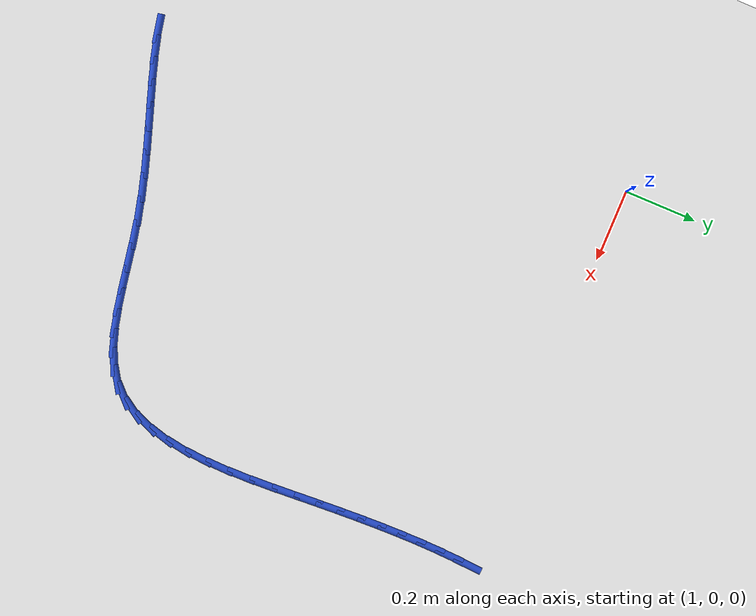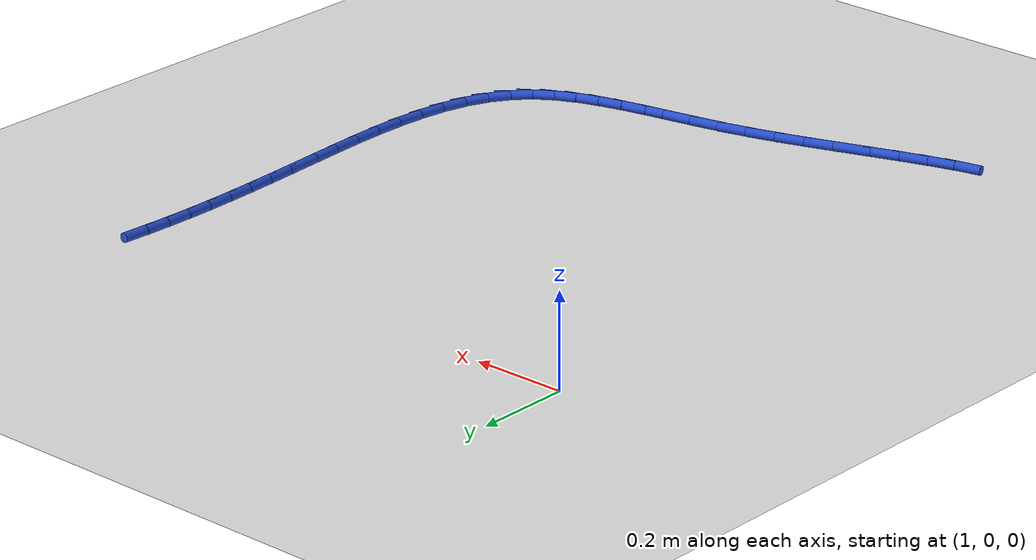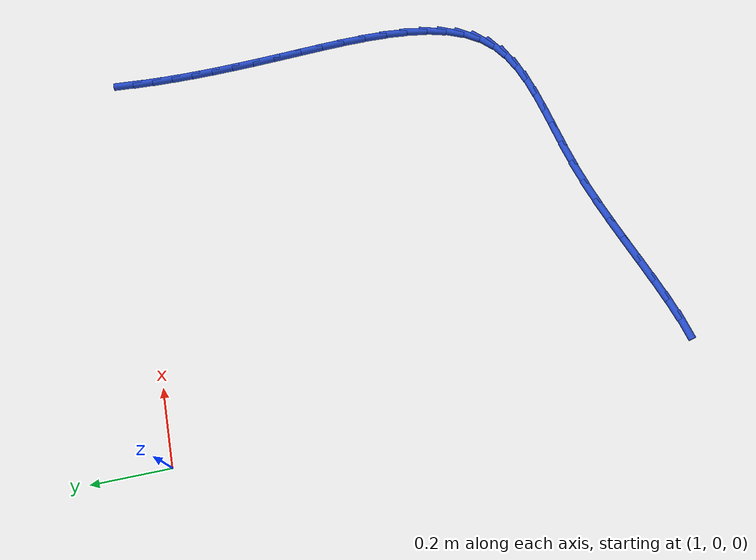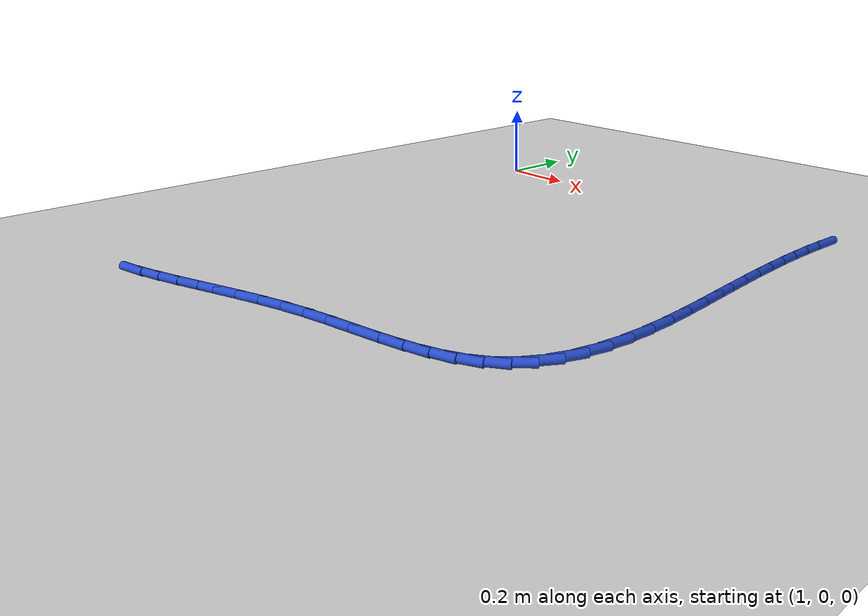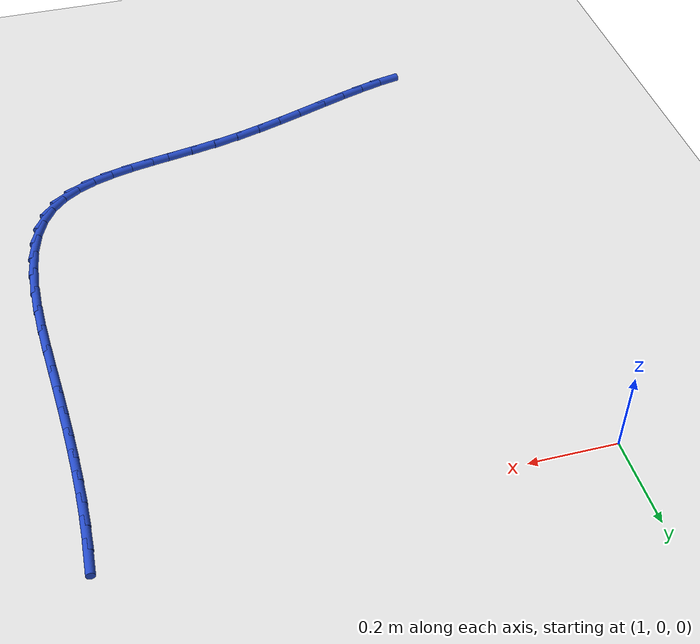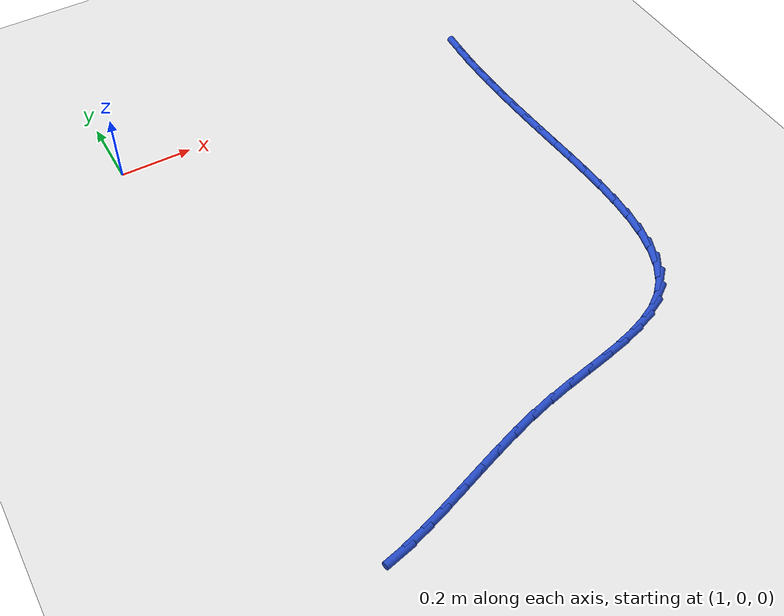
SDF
<sdf version="1.6">
 <world name="default">
  <model name="ground_plane">
   <static>1</static>
   <link name="link">
    <collision name="collision">
     <geometry><plane><normal>0 0 1</normal><size>100 100</size></plane></geometry>
     <surface><friction><ode><mu>100</mu><mu2>50</mu2></ode></friction></surface>
    </collision>
    <visual name="visual">
     <cast_shadows>0</cast_shadows>
     <geometry><plane><normal>0 0 1</normal><size>100 100</size></plane></geometry>
     <material>
      <script><uri>file://media/materials/scripts/gazebo.material</uri><name>Gazebo/WhiteGlow</name></script>
     </material>
    </visual>
   </link>
  </model>
  <model name="line">
   <link name="link_71">
    <pose>2.087163092779613 0.002262728078685952 0.01 0 1.57 1.517147207940919</pose>
    <collision name="collision">
     <geometry><cylinder><radius>0.01</radius><length>0.08</length></cylinder></geometry>
    </collision>
    <visual name="visual">
     <material>
      <script><name>Gazebo/Blue</name><uri>file://media/materials/scripts/gazebo.material</uri></script>
     </material>
     <geometry><cylinder><radius>0.01</radius><length>0.08</length></cylinder></geometry>
    </visual>
   </link>
   <link name="link_72">
    <pose>2.0842456211933587 -0.05206569449110433 0.01 0 1.57 1.5443812148516005</pose>
    <collision name="collision">
     <geometry><cylinder><radius>0.01</radius><length>0.08</length></cylinder></geometry>
    </collision>
    <visual name="visual">
     <material>
      <script><name>Gazebo/Blue</name><uri>file://media/materials/scripts/gazebo.material</uri></script>
     </material>
     <geometry><cylinder><radius>0.01</radius><length>0.08</length></cylinder></geometry>
    </visual>
   </link>
   <link name="link_73">
    <pose>2.0827942262234598 -0.10699854441019695 0.01 0 1.57 1.56823728818078</pose>
    <collision name="collision">
     <geometry><cylinder><radius>0.01</radius><length>0.08</length></cylinder></geometry>
    </collision>
    <visual name="visual">
     <material>
      <script><name>Gazebo/Blue</name><uri>file://media/materials/scripts/gazebo.material</uri></script>
     </material>
     <geometry><cylinder><radius>0.01</radius><length>0.08</length></cylinder></geometry>
    </visual>
   </link>
   <link name="link_74">
    <pose>2.0826517521912815 -0.1626732498978914 0.01 0 1.57 -1.5529517130383117</pose>
    <collision name="collision">
     <geometry><cylinder><radius>0.01</radius><length>0.08</length></cylinder></geometry>
    </collision>
    <visual name="visual">
     <material>
      <script><name>Gazebo/Blue</name><uri>file://media/materials/scripts/gazebo.material</uri></script>
     </material>
     <geometry><cylinder><radius>0.01</radius><length>0.08</length></cylinder></geometry>
    </visual>
   </link>
   <link name="link_75">
    <pose>2.083661043418189 -0.2192272391734897 0.01 0 1.57 -1.5360027241434457</pose>
    <collision name="collision">
     <geometry><cylinder><radius>0.01</radius><length>0.08</length></cylinder></geometry>
    </collision>
    <visual name="visual">
     <material>
      <script><name>Gazebo/Blue</name><uri>file://media/materials/scripts/gazebo.material</uri></script>
     </material>
     <geometry><cylinder><radius>0.01</radius><length>0.08</length></cylinder></geometry>
    </visual>
   </link>
   <link name="link_76">
    <pose>2.085664944225547 -0.27679794045629336 0.01 0 1.57 -1.522449826199268</pose>
    <collision name="collision">
     <geometry><cylinder><radius>0.01</radius><length>0.08</length></cylinder></geometry>
    </collision>
    <visual name="visual">
     <material>
      <script><name>Gazebo/Blue</name><uri>file://media/materials/scripts/gazebo.material</uri></script>
     </material>
     <geometry><cylinder><radius>0.01</radius><length>0.08</length></cylinder></geometry>
    </visual>
   </link>
   <link name="link_77">
    <pose>2.0885062989347207 -0.33552278196560326 0.01 0 1.57 -1.5121853663705571</pose>
    <collision name="collision">
     <geometry><cylinder><radius>0.01</radius><length>0.08</length></cylinder></geometry>
    </collision>
    <visual name="visual">
     <material>
      <script><name>Gazebo/Blue</name><uri>file://media/materials/scripts/gazebo.material</uri></script>
     </material>
     <geometry><cylinder><radius>0.01</radius><length>0.08</length></cylinder></geometry>
    </visual>
   </link>
   <link name="link_78">
    <pose>2.0920279518670757 -0.39553919192072196 0.01 0 1.57 -1.5050636957519175</pose>
    <collision name="collision">
     <geometry><cylinder><radius>0.01</radius><length>0.08</length></cylinder></geometry>
    </collision>
    <visual name="visual">
     <material>
      <script><name>Gazebo/Blue</name><uri>file://media/materials/scripts/gazebo.material</uri></script>
     </material>
     <geometry><cylinder><radius>0.01</radius><length>0.08</length></cylinder></geometry>
    </visual>
   </link>
   <link name="link_79">
    <pose>2.096072747343976 -0.45698459854094836 0.01 0 1.57 -1.501643881255641</pose>
    <collision name="collision">
     <geometry><cylinder><radius>0.01</radius><length>0.08</length></cylinder></geometry>
    </collision>
    <visual name="visual">
     <material>
      <script><name>Gazebo/Blue</name><uri>file://media/materials/scripts/gazebo.material</uri></script>
     </material>
     <geometry><cylinder><radius>0.01</radius><length>0.08</length></cylinder></geometry>
    </visual>
   </link>
   <link name="link_80">
    <pose>2.1004311447800097 -0.5199100354146243 0.01 0 1.57 -1.5069986258296735</pose>
    <collision name="collision">
     <geometry><cylinder><radius>0.01</radius><length>0.08</length></cylinder></geometry>
    </collision>
    <visual name="visual">
     <material>
      <script><name>Gazebo/Blue</name><uri>file://media/materials/scripts/gazebo.material</uri></script>
     </material>
     <geometry><cylinder><radius>0.01</radius><length>0.08</length></cylinder></geometry>
    </visual>
   </link>
   <link name="link_81">
    <pose>2.1045083155807567 -0.5837311085346446 0.01 0 1.57 -1.523389149344521</pose>
    <collision name="collision">
     <geometry><cylinder><radius>0.01</radius><length>0.08</length></cylinder></geometry>
    </collision>
    <visual name="visual">
     <material>
      <script><name>Gazebo/Blue</name><uri>file://media/materials/scripts/gazebo.material</uri></script>
     </material>
     <geometry><cylinder><radius>0.01</radius><length>0.08</length></cylinder></geometry>
    </visual>
   </link>
   <link name="link_82">
    <pose>2.1075374726445957 -0.6475798251880198 0.01 0 1.57 -1.5515379984079132</pose>
    <collision name="collision">
     <geometry><cylinder><radius>0.01</radius><length>0.08</length></cylinder></geometry>
    </collision>
    <visual name="visual">
     <material>
      <script><name>Gazebo/Blue</name><uri>file://media/materials/scripts/gazebo.material</uri></script>
     </material>
     <geometry><cylinder><radius>0.01</radius><length>0.08</length></cylinder></geometry>
    </visual>
   </link>
   <link name="link_83">
    <pose>2.108751033239691 -0.7105868804864948 0.01 0 1.57 1.548455737709211</pose>
    <collision name="collision">
     <geometry><cylinder><radius>0.01</radius><length>0.08</length></cylinder></geometry>
    </collision>
    <visual name="visual">
     <material>
      <script><name>Gazebo/Blue</name><uri>file://media/materials/scripts/gazebo.material</uri></script>
     </material>
     <geometry><cylinder><radius>0.01</radius><length>0.08</length></cylinder></geometry>
    </visual>
   </link>
   <link name="link_84">
    <pose>2.1073814146342054 -0.7718829695418168 0.01 0 1.57 1.490575179228844</pose>
    <collision name="collision">
     <geometry><cylinder><radius>0.01</radius><length>0.08</length></cylinder></geometry>
    </collision>
    <visual name="visual">
     <material>
      <script><name>Gazebo/Blue</name><uri>file://media/materials/scripts/gazebo.material</uri></script>
     </material>
     <geometry><cylinder><radius>0.01</radius><length>0.08</length></cylinder></geometry>
    </visual>
   </link>
   <link name="link_85">
    <pose>2.1026610340963017 -0.8305987874657319 0.01 0 1.57 1.41220940392731</pose>
    <collision name="collision">
     <geometry><cylinder><radius>0.01</radius><length>0.08</length></cylinder></geometry>
    </collision>
    <visual name="visual">
     <material>
      <script><name>Gazebo/Blue</name><uri>file://media/materials/scripts/gazebo.material</uri></script>
     </material>
     <geometry><cylinder><radius>0.01</radius><length>0.08</length></cylinder></geometry>
    </visual>
   </link>
   <link name="link_86">
    <pose>2.0938223088941457 -0.8858650293699866 0.01 0 1.57 1.307654174831309</pose>
    <collision name="collision">
     <geometry><cylinder><radius>0.01</radius><length>0.08</length></cylinder></geometry>
    </collision>
    <visual name="visual">
     <material>
      <script><name>Gazebo/Blue</name><uri>file://media/materials/scripts/gazebo.material</uri></script>
     </material>
     <geometry><cylinder><radius>0.01</radius><length>0.08</length></cylinder></geometry>
    </visual>
   </link>
   <link name="link_87">
    <pose>2.0800976562958993 -0.9368123903663279 0.01 0 1.57 1.170212591688762</pose>
    <collision name="collision">
     <geometry><cylinder><radius>0.01</radius><length>0.08</length></cylinder></geometry>
    </collision>
    <visual name="visual">
     <material>
      <script><name>Gazebo/Blue</name><uri>file://media/materials/scripts/gazebo.material</uri></script>
     </material>
     <geometry><cylinder><radius>0.01</radius><length>0.08</length></cylinder></geometry>
    </visual>
   </link>
   <link name="link_88">
    <pose>2.0607194935697266 -0.9825715655665006 0.01 0 1.57 0.9945422183669194</pose>
    <collision name="collision">
     <geometry><cylinder><radius>0.01</radius><length>0.08</length></cylinder></geometry>
    </collision>
    <visual name="visual">
     <material>
      <script><name>Gazebo/Blue</name><uri>file://media/materials/scripts/gazebo.material</uri></script>
     </material>
     <geometry><cylinder><radius>0.01</radius><length>0.08</length></cylinder></geometry>
    </visual>
   </link>
   <link name="link_89">
    <pose>2.034920237983791 -1.0222732500822518 0.01 0 1.57 0.7833570135102768</pose>
    <collision name="collision">
     <geometry><cylinder><radius>0.01</radius><length>0.08</length></cylinder></geometry>
    </collision>
    <visual name="visual">
     <material>
      <script><name>Gazebo/Blue</name><uri>file://media/materials/scripts/gazebo.material</uri></script>
     </material>
     <geometry><cylinder><radius>0.01</radius><length>0.08</length></cylinder></geometry>
    </visual>
   </link>
   <link name="link_90">
    <pose>2.001967922899663 -1.0550913177705665 0.01 0 1.57 0.5782835365766634</pose>
    <collision name="collision">
     <geometry><cylinder><radius>0.01</radius><length>0.08</length></cylinder></geometry>
    </collision>
    <visual name="visual">
     <material>
      <script><name>Gazebo/Blue</name><uri>file://media/materials/scripts/gazebo.material</uri></script>
     </material>
     <geometry><cylinder><radius>0.01</radius><length>0.08</length></cylinder></geometry>
    </visual>
   </link>
   <link name="link_91">
    <pose>1.9619600158048371 -1.0812051970394696 0.01 0 1.57 0.4200155871883968</pose>
    <collision name="collision">
     <geometry><cylinder><radius>0.01</radius><length>0.08</length></cylinder></geometry>
    </collision>
    <visual name="visual">
     <material>
      <script><name>Gazebo/Blue</name><uri>file://media/materials/scripts/gazebo.material</uri></script>
     </material>
     <geometry><cylinder><radius>0.01</radius><length>0.08</length></cylinder></geometry>
    </visual>
   </link>
   <link name="link_92">
    <pose>1.9158291609156402 -1.1018068328240305 0.01 0 1.57 0.30819702439163044</pose>
    <collision name="collision">
     <geometry><cylinder><radius>0.01</radius><length>0.08</length></cylinder></geometry>
    </collision>
    <visual name="visual">
     <material>
      <script><name>Gazebo/Blue</name><uri>file://media/materials/scripts/gazebo.material</uri></script>
     </material>
     <geometry><cylinder><radius>0.01</radius><length>0.08</length></cylinder></geometry>
    </visual>
   </link>
   <link name="link_93">
    <pose>1.8645447670795234 -1.11813274122054 0.01 0 1.57 0.23510601362853778</pose>
    <collision name="collision">
     <geometry><cylinder><radius>0.01</radius><length>0.08</length></cylinder></geometry>
    </collision>
    <visual name="visual">
     <material>
      <script><name>Gazebo/Blue</name><uri>file://media/materials/scripts/gazebo.material</uri></script>
     </material>
     <geometry><cylinder><radius>0.01</radius><length>0.08</length></cylinder></geometry>
    </visual>
   </link>
   <link name="link_94">
    <pose>1.8090762431439382 -1.1314194383252882 0.01 0 1.57 0.19325247205280616</pose>
    <collision name="collision">
     <geometry><cylinder><radius>0.01</radius><length>0.08</length></cylinder></geometry>
    </collision>
    <visual name="visual">
     <material>
      <script><name>Gazebo/Blue</name><uri>file://media/materials/scripts/gazebo.material</uri></script>
     </material>
     <geometry><cylinder><radius>0.01</radius><length>0.08</length></cylinder></geometry>
    </visual>
   </link>
   <link name="link_95">
    <pose>1.7503929979563357 -1.1429034402345657 0.01 0 1.57 0.1773087977708831</pose>
    <collision name="collision">
     <geometry><cylinder><radius>0.01</radius><length>0.08</length></cylinder></geometry>
    </collision>
    <visual name="visual">
     <material>
      <script><name>Gazebo/Blue</name><uri>file://media/materials/scripts/gazebo.material</uri></script>
     </material>
     <geometry><cylinder><radius>0.01</radius><length>0.08</length></cylinder></geometry>
    </visual>
   </link>
   <link name="link_96">
    <pose>1.6894644403641705 -1.153821263044662 0.01 0 1.57 0.18418019842987973</pose>
    <collision name="collision">
     <geometry><cylinder><radius>0.01</radius><length>0.08</length></cylinder></geometry>
    </collision>
    <visual name="visual">
     <material>
      <script><name>Gazebo/Blue</name><uri>file://media/materials/scripts/gazebo.material</uri></script>
     </material>
     <geometry><cylinder><radius>0.01</radius><length>0.08</length></cylinder></geometry>
    </visual>
   </link>
   <link name="link_97">
    <pose>1.6272599792148932 -1.1654094228518674 0.01 0 1.57 0.2126150158831517</pose>
    <collision name="collision">
     <geometry><cylinder><radius>0.01</radius><length>0.08</length></cylinder></geometry>
    </collision>
    <visual name="visual">
     <material>
      <script><name>Gazebo/Blue</name><uri>file://media/materials/scripts/gazebo.material</uri></script>
     </material>
     <geometry><cylinder><radius>0.01</radius><length>0.08</length></cylinder></geometry>
    </visual>
   </link>
   <link name="link_98">
    <pose>1.564748914829663 -1.1789041733128012 0.01 0 1.57 0.25542545267913946</pose>
    <collision name="collision">
     <geometry><cylinder><radius>0.01</radius><length>0.08</length></cylinder></geometry>
    </collision>
    <visual name="visual">
     <material>
      <script><name>Gazebo/Blue</name><uri>file://media/materials/scripts/gazebo.material</uri></script>
     </material>
     <geometry><cylinder><radius>0.01</radius><length>0.08</length></cylinder></geometry>
    </visual>
   </link>
   <link name="link_99">
    <pose>1.5027187189179012 -1.195102067805955 0.01 0 1.57 0.29093249980109287</pose>
    <collision name="collision">
     <geometry><cylinder><radius>0.01</radius><length>0.08</length></cylinder></geometry>
    </collision>
    <visual name="visual">
     <material>
      <script><name>Gazebo/Blue</name><uri>file://media/materials/scripts/gazebo.material</uri></script>
     </material>
     <geometry><cylinder><radius>0.01</radius><length>0.08</length></cylinder></geometry>
    </visual>
   </link>
   <link name="link_100">
    <pose>1.4414035326520016 -1.2134615887170255 0.01 0 1.57 0.3153230643764065</pose>
    <collision name="collision">
     <geometry><cylinder><radius>0.01</radius><length>0.08</length></cylinder></geometry>
    </collision>
    <visual name="visual">
     <material>
      <script><name>Gazebo/Blue</name><uri>file://media/materials/scripts/gazebo.material</uri></script>
     </material>
     <geometry><cylinder><radius>0.01</radius><length>0.08</length></cylinder></geometry>
    </visual>
   </link>
   <link name="link_101">
    <pose>1.3809326241909021 -1.2331876131671393 0.01 0 1.57 0.3287671724495455</pose>
    <collision name="collision">
     <geometry><cylinder><radius>0.01</radius><length>0.08</length></cylinder></geometry>
    </collision>
    <visual name="visual">
     <material>
      <script><name>Gazebo/Blue</name><uri>file://media/materials/scripts/gazebo.material</uri></script>
     </material>
     <geometry><cylinder><radius>0.01</radius><length>0.08</length></cylinder></geometry>
    </visual>
   </link>
   <link name="link_102">
    <pose>1.3214352616935374 -1.2534850182774253 0.01 0 1.57 0.3311042992151008</pose>
    <collision name="collision">
     <geometry><cylinder><radius>0.01</radius><length>0.08</length></cylinder></geometry>
    </collision>
    <visual name="visual">
     <material>
      <script><name>Gazebo/Blue</name><uri>file://media/materials/scripts/gazebo.material</uri></script>
     </material>
     <geometry><cylinder><radius>0.01</radius><length>0.08</length></cylinder></geometry>
    </visual>
   </link>
   <link name="link_103">
    <pose>1.2630407133188433 -1.2735586811690112 0.01 0 1.57 0.3217606691585787</pose>
    <collision name="collision">
     <geometry><cylinder><radius>0.01</radius><length>0.08</length></cylinder></geometry>
    </collision>
    <visual name="visual">
     <material>
      <script><name>Gazebo/Blue</name><uri>file://media/materials/scripts/gazebo.material</uri></script>
     </material>
     <geometry><cylinder><radius>0.01</radius><length>0.08</length></cylinder></geometry>
    </visual>
   </link>
   <link name="link_104">
    <pose>1.2058782472257545 -1.2926134789630248 0.01 0 1.57 0.2996647051833844</pose>
    <collision name="collision">
     <geometry><cylinder><radius>0.01</radius><length>0.08</length></cylinder></geometry>
    </collision>
    <visual name="visual">
     <material>
      <script><name>Gazebo/Blue</name><uri>file://media/materials/scripts/gazebo.material</uri></script>
     </material>
     <geometry><cylinder><radius>0.01</radius><length>0.08</length></cylinder></geometry>
    </visual>
   </link>
   <link name="link_105">
    <pose>1.150077131573209 -1.3098542887805946 0.01 0 1.57 0.26316026123054553</pose>
    <collision name="collision">
     <geometry><cylinder><radius>0.01</radius><length>0.08</length></cylinder></geometry>
    </collision>
    <visual name="visual">
     <material>
      <script><name>Gazebo/Blue</name><uri>file://media/materials/scripts/gazebo.material</uri></script>
     </material>
     <geometry><cylinder><radius>0.01</radius><length>0.08</length></cylinder></geometry>
    </visual>
   </link>
   <link name="link_106">
    <pose>1.0957666345201416 -1.3244859877428479 0.01 0 1.57 0.20994299133055455</pose>
    <collision name="collision">
     <geometry><cylinder><radius>0.01</radius><length>0.08</length></cylinder></geometry>
    </collision>
    <visual name="visual">
     <material>
      <script><name>Gazebo/Blue</name><uri>file://media/materials/scripts/gazebo.material</uri></script>
     </material>
     <geometry><cylinder><radius>0.01</radius><length>0.08</length></cylinder></geometry>
    </visual>
   </link>
  </model>
 </world>
</sdf>
